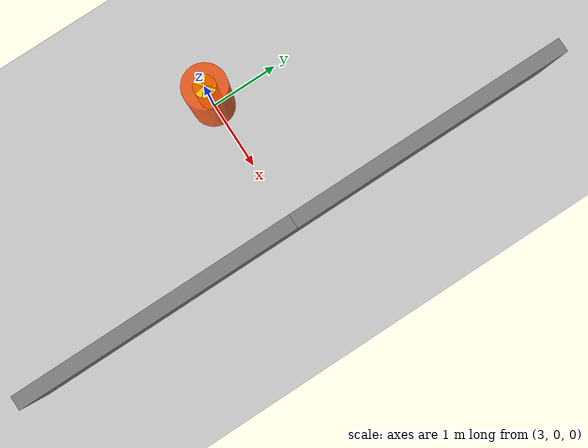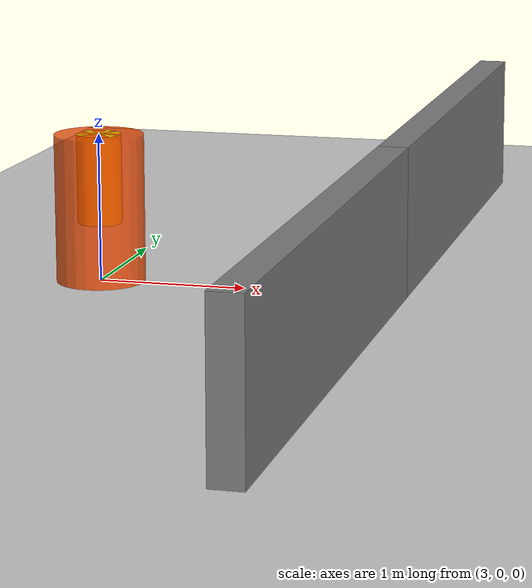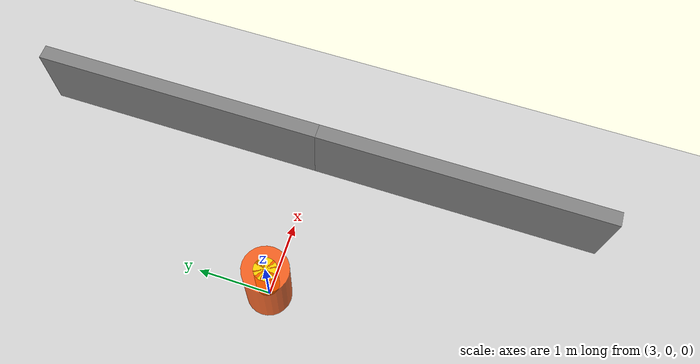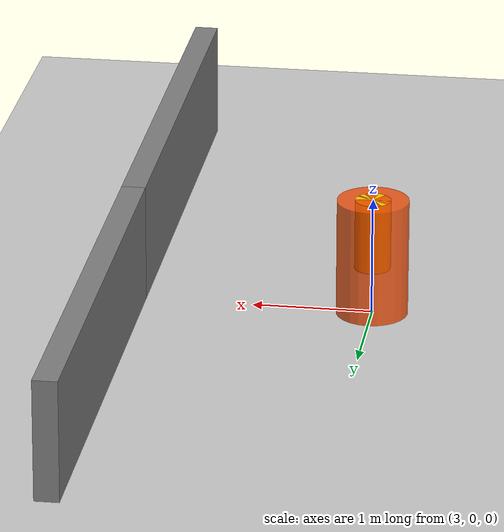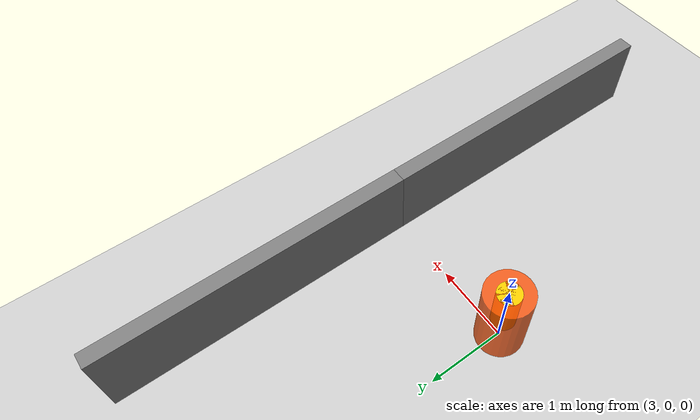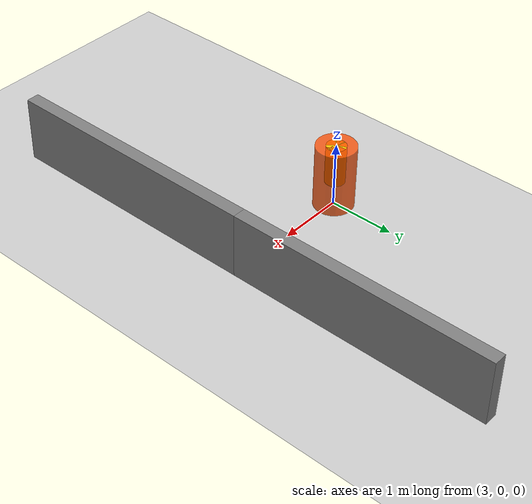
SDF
<?xml version="1.0"?>
<sdf version="1.6">
  <world name="fire_world">

    <!-- Physics -->
    <physics name="default_physics" default="0" type="ode">
      <max_step_size>0.001</max_step_size>
      <real_time_factor>1</real_time_factor>
      <real_time_update_rate>1000</real_time_update_rate>
    </physics>

    <!-- Scene -->
    <scene>
      <ambient>0.4 0.4 0.4 1</ambient>
      <background>0.7 0.7 0.7 1</background>
      <shadows>1</shadows>
    </scene>

    <!-- Sun -->
    <light name="sun" type="directional">
      <cast_shadows>1</cast_shadows>
      <pose>0 0 10 0 0 0</pose>
      <diffuse>0.8 0.8 0.8 1</diffuse>
      <specular>0.2 0.2 0.2 1</specular>
      <attenuation>
        <range>1000</range>
        <constant>0.9</constant>
        <linear>0.01</linear>
        <quadratic>0.001</quadratic>
      </attenuation>
      <direction>-0.5 0.1 -0.9</direction>
    </light>

    <!-- Ground plane -->
    <model name="ground_plane">
      <static>true</static>
      <link name="link">
        <collision name="collision">
          <geometry>
            <plane>
              <normal>0 0 1</normal>
              <size>100 100</size>
            </plane>
          </geometry>
        </collision>
        <visual name="visual">
          <geometry>
            <plane>
              <normal>0 0 1</normal>
              <size>100 100</size>
            </plane>
          </geometry>
          <material>
            <ambient>0.8 0.8 0.8 1</ambient>
            <diffuse>0.8 0.8 0.8 1</diffuse>
            <specular>0.1 0.1 0.1 1</specular>
          </material>
        </visual>
      </link>
    </model>

    <!-- Fire Model -->
    <model name="fire">
      <pose>3 0 0.5 0 0 0</pose>
      <static>false</static>

      <!-- Base cylinder for fire -->
      <link name="fire_base">
        <visual name="visual">
          <geometry>
            <cylinder>
              <radius>0.3</radius>
              <length>1.0</length>
            </cylinder>
          </geometry>
          <material>
            <ambient>1.0 0.3 0.0 0.8</ambient>
            <diffuse>1.0 0.3 0.0 0.8</diffuse>
            <specular>1.0 0.5 0.0 0.8</specular>
            <emissive>1.0 0.3 0.0 1.0</emissive>
          </material>
          <transparency>0.2</transparency>
        </visual>

        <!-- Light to simulate fire glow -->
        <light name="fire_light" type="point">
          <pose>0 0 0.5 0 0 0</pose>
          <diffuse>1.0 0.5 0.1 1</diffuse>
          <specular>1.0 0.5 0.1 1</specular>
          <attenuation>
            <range>10</range>
            <constant>0.5</constant>
            <linear>0.1</linear>
            <quadratic>0.01</quadratic>
          </attenuation>
          <cast_shadows>true</cast_shadows>
        </light>
      </link>

      <!-- Inner flame (smaller, brighter) -->
      <link name="inner_flame">
        <pose>0 0 0.2 0 0 0</pose>
        <visual name="visual">
          <geometry>
            <cylinder>
              <radius>0.15</radius>
              <length>0.6</length>
            </cylinder>
          </geometry>
          <material>
            <ambient>1.0 0.8 0.0 0.9</ambient>
            <diffuse>1.0 0.8 0.0 0.9</diffuse>
            <specular>1.0 1.0 0.5 0.9</specular>
            <emissive>1.0 0.8 0.0 1.0</emissive>
          </material>
          <transparency>0.1</transparency>
        </visual>
      </link>

      <!-- Connect the flame parts -->
      <joint name="flame_joint" type="fixed">
        <parent>fire_base</parent>
        <child>inner_flame</child>
      </joint>

      <!-- Plugin to make fire move/flicker -->
      <plugin name="fire_movement" filename="libgazebo_ros_planar_move.so">
        <ros>
          <namespace>/fire</namespace>
        </ros>
        <update_rate>10</update_rate>
        <publish_rate>10</publish_rate>
        <publish_odom>false</publish_odom>
        <publish_odom_tf>false</publish_odom_tf>
      </plugin>
    </model>

    <!-- Additional obstacles -->
    <model name="wall_1">
      <pose>5 2 0.5 0 0 0</pose>
      <static>true</static>
      <link name="link">
        <collision name="collision">
          <geometry>
            <box>
              <size>0.2 4 1</size>
            </box>
          </geometry>
        </collision>
        <visual name="visual">
          <geometry>
            <box>
              <size>0.2 4 1</size>
            </box>
          </geometry>
          <material>
            <ambient>0.5 0.5 0.5 1</ambient>
            <diffuse>0.5 0.5 0.5 1</diffuse>
          </material>
        </visual>
      </link>
    </model>

    <model name="wall_2">
      <pose>5 -2 0.5 0 0 0</pose>
      <static>true</static>
      <link name="link">
        <collision name="collision">
          <geometry>
            <box>
              <size>0.2 4 1</size>
            </box>
          </geometry>
        </collision>
        <visual name="visual">
          <geometry>
            <box>
              <size>0.2 4 1</size>
            </box>
          </geometry>
          <material>
            <ambient>0.5 0.5 0.5 1</ambient>
            <diffuse>0.5 0.5 0.5 1</diffuse>
          </material>
        </visual>
      </link>
    </model>

  </world>
</sdf>
